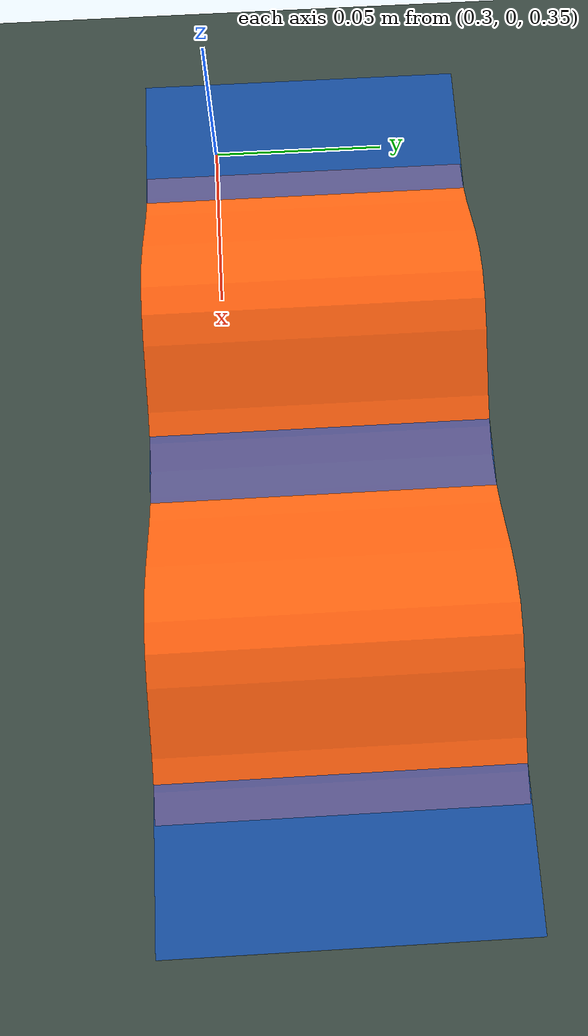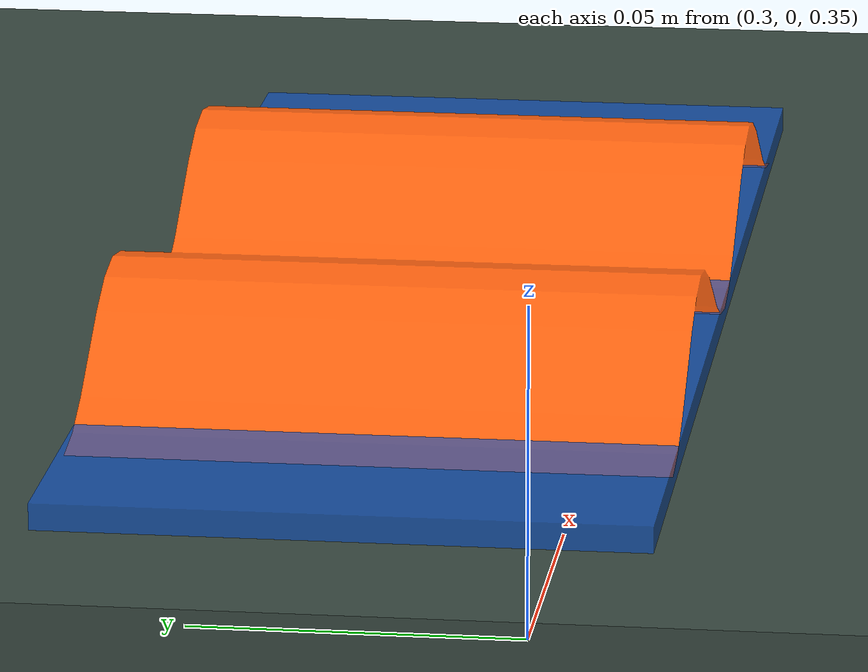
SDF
<?xml version="1.0" ?>
<sdf version="1.6">
  <world name="rm75_bumpy_wiping_table">
    <include>
      <uri>model://sun</uri>
    </include>

    <include>
      <uri>model://ground_plane</uri>
    </include>

    <model name="bumpy_wiping_table">
      <static>true</static>
      <pose>0.640 0.026 0.341 0 0 0</pose>
      <link name="table_link">
        <visual name="table_visual">
          <geometry>
            <box>
              <size>0.76 0.44 0.05</size>
            </box>
          </geometry>
          <material>
            <ambient>0.18 0.22 0.20 1.0</ambient>
            <diffuse>0.22 0.28 0.25 1.0</diffuse>
            <specular>0.05 0.05 0.05 1.0</specular>
          </material>
        </visual>
      </link>
    </model>

    <!-- Blue straight wiping lane: sim_09 now uses a longer 18 cm stroke on this x-direction line. -->
    <model name="wiping_lane">
      <static>true</static>
      <pose>0.410 0.026 0.369 0 0 0</pose>
      <link name="lane_link">
        <visual name="lane_visual">
          <geometry>
            <box>
              <size>0.24 0.09 0.004</size>
            </box>
          </geometry>
          <material>
            <ambient>0.05 0.35 0.85 0.65</ambient>
            <diffuse>0.05 0.35 0.85 0.65</diffuse>
          </material>
          <transparency>0.35</transparency>
        </visual>
      </link>
    </model>

    <model name="smooth_wave_surface">
      <static>true</static>
      <pose>0.410 0.026 0.366 0 0 0</pose>
      <link name="wave_link">
        <visual name="wave_surface_visual">
          <geometry>
            <mesh>
              <uri>file:///home/ros/ws_rm_75_6f_robot/src/rm_75_robot/rm_75_gazebo/meshes/smooth_wave_surface.dae</uri>
            </mesh>
          </geometry>
          <material>
            <ambient>1.00 0.45 0.05 0.92</ambient>
            <diffuse>1.00 0.38 0.06 0.92</diffuse>
            <specular>0.08 0.08 0.08 1.0</specular>
          </material>
        </visual>
      </link>
    </model>

  </world>
</sdf>
